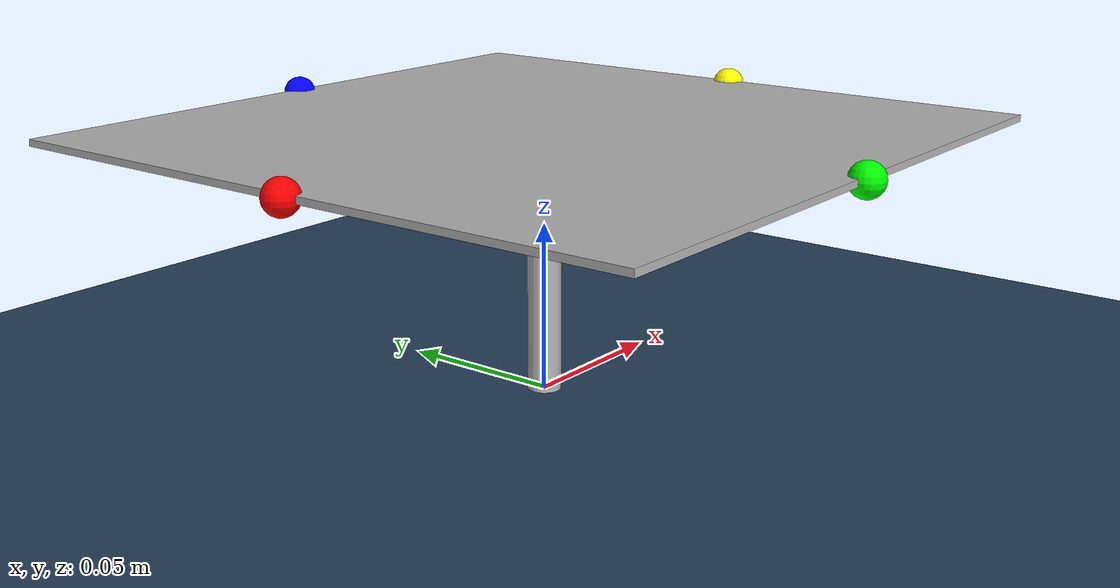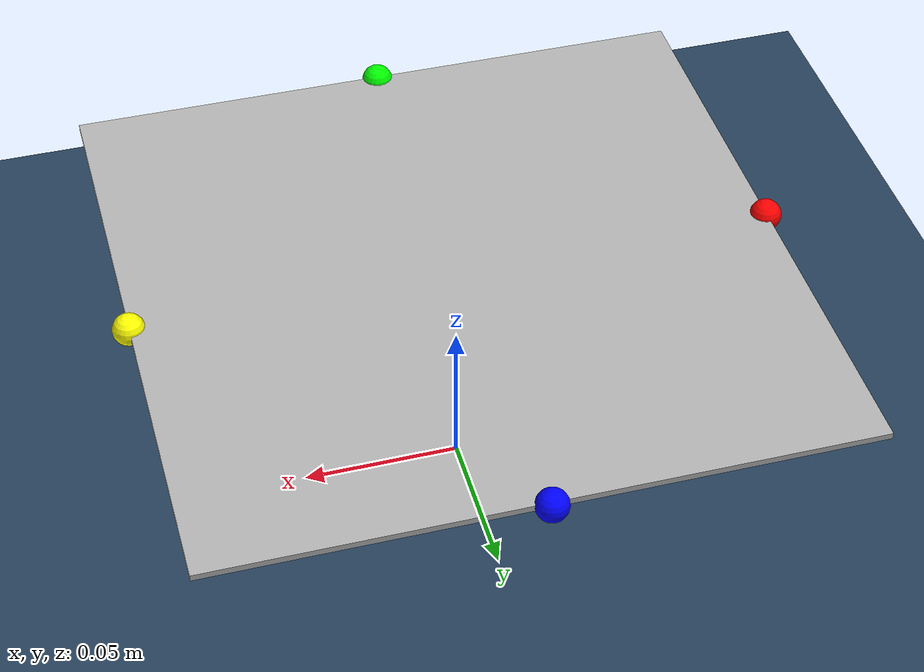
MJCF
<mujoco model="mpc-ball-balancing-plate">
    <compiler autolimits="true"/>
    <option timestep="0.0001" iterations="50" solver="PGS" gravity="0 0 -9.81"/>

    <asset>
      <texture name="grid" type="2d" builtin="checker" rgb1=".1 .2 .3"
       rgb2=".2 .3 .4" width="300" height="300"/>
      <material name="grid" texture="grid" texrepeat="8 8" reflectance=".2"/>
    </asset>

    <worldbody>
      <geom size=".2 .2 .01" type="plane" material="grid"/>
      <light pos="0 0 .6"/>
      <camera name="closeup" pos="0 -.1 .07" xyaxes="1 0 0 0 1 2"/>

      <body name="base_link" pos="0 0 0">
        <geom name="stem" type="cylinder" pos="0 0 0.035" size="0.005 .035" rgba="0.7 0.7 0.7 1"/>
        <body name="pivot" pos="0 0 0.0725">
          <geom name="shape_pivot" type="sphere" size=".0025" pos="0 0 0" rgba="0.5 0.5 0.5 1"/>
          <body name="plate" pos="0 0 0.005">
            <joint name="joint_plate_x" type="hinge" pos="0 0 0" axis="1 0 0"/>
            <joint name="joint_plate_y" type="hinge" pos="0 0 0" axis="0 1 0"/>
            <geom name="shape_plate" type="box" size="0.1 0.1 0.001" rgba="0.7 0.7 0.7 1" condim="3"/>
            <inertial pos="0 0 0" mass="10" fullinertia="10 10 10 1 1 1"/>

            <site name="joint_plate_x1" pos="-0.1 0 0" rgba="1 0 0 1"/>
            <site name="joint_plate_x2" pos="0.1 0 0" rgba="1 1 0 1"/>
            <site name="joint_plate_y1" pos="0 -0.1 0" rgba="0 1 0 1"/>
            <site name="joint_plate_y2" pos="0 0.1 0" rgba="0 0 1 1"/>

          </body>
        </body>
      </body>
    </worldbody>

    <actuator>
      <motor name="motor_plate_x1" site="joint_plate_x1" gear="0 0 1 0 0 0" forcelimited="true" forcerange="-5 5"/>
      <motor name="motor_plate_x2" site="joint_plate_x2" gear="0 0 10 0 0 0" forcelimited="true" forcerange="-5 5"/>
      <motor name="motor_plate_y1" site="joint_plate_y1" gear="0 0 10 0 0 0" forcelimited="true" forcerange="-5 5"/>
      <motor name="motor_plate_y2" site="joint_plate_y2" gear="0 0 10 0 0 0" forcelimited="true" forcerange="-5 5"/>
    </actuator>

  </mujoco>
